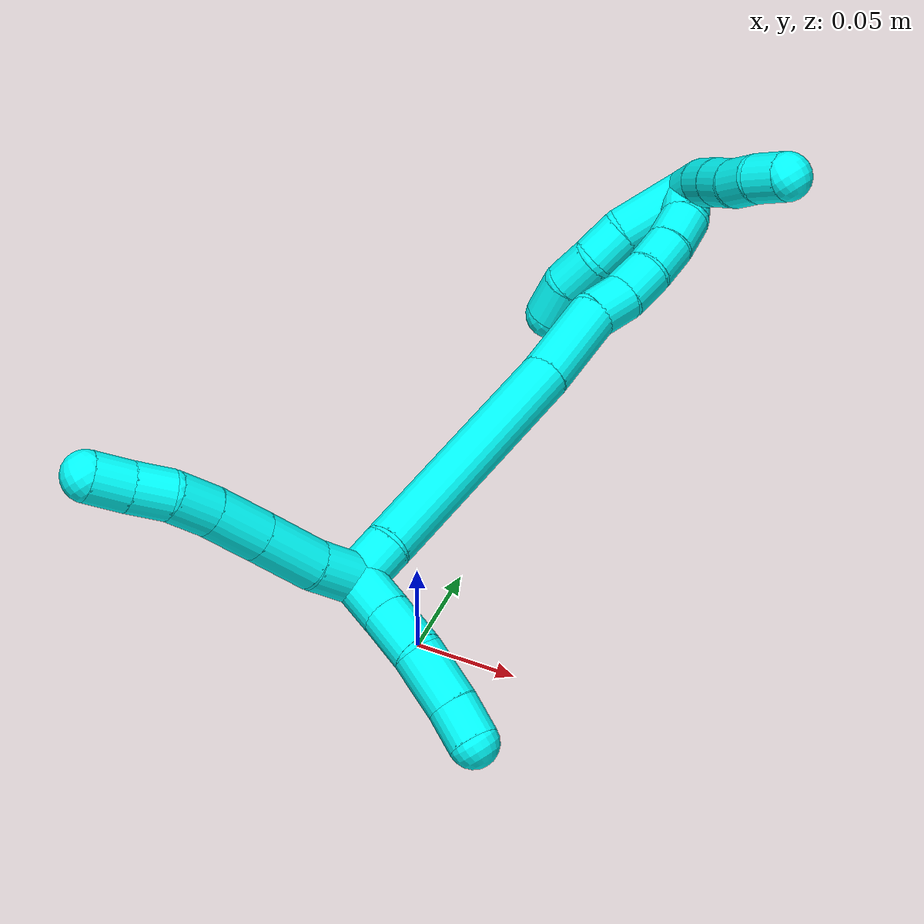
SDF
<sdf version="1.7">
 <world name="default">
  <model name="3">
   <static>0</static>
   <link name="3">
    <collision name="collision-cylinder-e_1_2_8">
     <pose>-0.001003 -0.009288 0.008543 0.827159 -0.079275 -0.034808</pose>
     <geometry><cylinder><radius>0.0125</radius><length>0.025319</length></cylinder></geometry>
     <surface>
      <friction><ode><mu>1.16</mu><mu2>1.16</mu2><slip1>0</slip1><slip2>0</slip2></ode></friction>
      <contact><ode><kp>1e+06</kp><kd>1</kd><max_vel>0</max_vel><min_depth>0.001</min_depth></ode></contact>
     </surface>
    </collision>
    <visual name="visual-cylinder-e_1_2_8">
     <pose>-0.001003 -0.009288 0.008543 0.827159 -0.079275 -0.034808</pose>
     <geometry><cylinder><radius>0.0125</radius><length>0.025319</length></cylinder></geometry>
     <material><ambient>0.003922 1 0.996078 1</ambient></material>
    </visual>
    <collision name="collision-cylinder-e_2_8_9">
     <pose>-0.002436 -0.029022 0.029772 0.688836 -0.026206 -0.009401</pose>
     <geometry><cylinder><radius>0.0125</radius><length>0.032876</length></cylinder></geometry>
     <surface>
      <friction><ode><mu>1.16</mu><mu2>1.16</mu2><slip1>0</slip1><slip2>0</slip2></ode></friction>
      <contact><ode><kp>1e+06</kp><kd>1</kd><max_vel>0</max_vel><min_depth>0.001</min_depth></ode></contact>
     </surface>
    </collision>
    <visual name="visual-cylinder-e_2_8_9">
     <pose>-0.002436 -0.029022 0.029772 0.688836 -0.026206 -0.009401</pose>
     <geometry><cylinder><radius>0.0125</radius><length>0.032876</length></cylinder></geometry>
     <material><ambient>0.003922 1 0.996078 1</ambient></material>
    </visual>
    <collision name="collision-cylinder-e_3_9_10">
     <pose>-0.00326 -0.048616 0.053334 0.699346 -0.027649 -0.010083</pose>
     <geometry><cylinder><radius>0.0125</radius><length>0.028436</length></cylinder></geometry>
     <surface>
      <friction><ode><mu>1.16</mu><mu2>1.16</mu2><slip1>0</slip1><slip2>0</slip2></ode></friction>
      <contact><ode><kp>1e+06</kp><kd>1</kd><max_vel>0</max_vel><min_depth>0.001</min_depth></ode></contact>
     </surface>
    </collision>
    <visual name="visual-cylinder-e_3_9_10">
     <pose>-0.00326 -0.048616 0.053334 0.699346 -0.027649 -0.010083</pose>
     <geometry><cylinder><radius>0.0125</radius><length>0.028436</length></cylinder></geometry>
     <material><ambient>0.003922 1 0.996078 1</ambient></material>
    </visual>
    <collision name="collision-cylinder-e_4_10_11">
     <pose>-0.004228 -0.06567 0.072056 0.789193 -0.051587 -0.021487</pose>
     <geometry><cylinder><radius>0.0125</radius><length>0.022305</length></cylinder></geometry>
     <surface>
      <friction><ode><mu>1.16</mu><mu2>1.16</mu2><slip1>0</slip1><slip2>0</slip2></ode></friction>
      <contact><ode><kp>1e+06</kp><kd>1</kd><max_vel>0</max_vel><min_depth>0.001</min_depth></ode></contact>
     </surface>
    </collision>
    <visual name="visual-cylinder-e_4_10_11">
     <pose>-0.004228 -0.06567 0.072056 0.789193 -0.051587 -0.021487</pose>
     <geometry><cylinder><radius>0.0125</radius><length>0.022305</length></cylinder></geometry>
     <material><ambient>0.003922 1 0.996078 1</ambient></material>
    </visual>
    <collision name="collision-cylinder-e_5_11_12">
     <pose>-0.008018 -0.080567 0.086586 0.807895 -0.320916 -0.138146</pose>
     <geometry><cylinder><radius>0.0125</radius><length>0.020385</length></cylinder></geometry>
     <surface>
      <friction><ode><mu>1.16</mu><mu2>1.16</mu2><slip1>0</slip1><slip2>0</slip2></ode></friction>
      <contact><ode><kp>1e+06</kp><kd>1</kd><max_vel>0</max_vel><min_depth>0.001</min_depth></ode></contact>
     </surface>
    </collision>
    <visual name="visual-cylinder-e_5_11_12">
     <pose>-0.008018 -0.080567 0.086586 0.807895 -0.320916 -0.138146</pose>
     <geometry><cylinder><radius>0.0125</radius><length>0.020385</length></cylinder></geometry>
     <material><ambient>0.003922 1 0.996078 1</ambient></material>
    </visual>
    <collision name="collision-cylinder-e_6_12_6">
     <pose>-0.013906 -0.094648 0.100304 0.789331 -0.261513 -0.109441</pose>
     <geometry><cylinder><radius>0.0125</radius><length>0.020678</length></cylinder></geometry>
     <surface>
      <friction><ode><mu>1.16</mu><mu2>1.16</mu2><slip1>0</slip1><slip2>0</slip2></ode></friction>
      <contact><ode><kp>1e+06</kp><kd>1</kd><max_vel>0</max_vel><min_depth>0.001</min_depth></ode></contact>
     </surface>
    </collision>
    <visual name="visual-cylinder-e_6_12_6">
     <pose>-0.013906 -0.094648 0.100304 0.789331 -0.261513 -0.109441</pose>
     <geometry><cylinder><radius>0.0125</radius><length>0.020678</length></cylinder></geometry>
     <material><ambient>0.003922 1 0.996078 1</ambient></material>
    </visual>
    <collision name="collision-cylinder-e_1_2_13">
     <pose>0.005085 -0.003336 -0.010622 2.83732 0.42842 1.91376</pose>
     <geometry><cylinder><radius>0.0125</radius><length>0.024479</length></cylinder></geometry>
     <surface>
      <friction><ode><mu>1.16</mu><mu2>1.16</mu2><slip1>0</slip1><slip2>0</slip2></ode></friction>
      <contact><ode><kp>1e+06</kp><kd>1</kd><max_vel>0</max_vel><min_depth>0.001</min_depth></ode></contact>
     </surface>
    </collision>
    <visual name="visual-cylinder-e_1_2_13">
     <pose>0.005085 -0.003336 -0.010622 2.83732 0.42842 1.91376</pose>
     <geometry><cylinder><radius>0.0125</radius><length>0.024479</length></cylinder></geometry>
     <material><ambient>0.003922 1 0.996078 1</ambient></material>
    </visual>
    <collision name="collision-cylinder-e_2_13_14">
     <pose>0.0154 -0.010423 -0.032269 2.81357 0.422163 1.82626</pose>
     <geometry><cylinder><radius>0.0125</radius><length>0.025534</length></cylinder></geometry>
     <surface>
      <friction><ode><mu>1.16</mu><mu2>1.16</mu2><slip1>0</slip1><slip2>0</slip2></ode></friction>
      <contact><ode><kp>1e+06</kp><kd>1</kd><max_vel>0</max_vel><min_depth>0.001</min_depth></ode></contact>
     </surface>
    </collision>
    <visual name="visual-cylinder-e_2_13_14">
     <pose>0.0154 -0.010423 -0.032269 2.81357 0.422163 1.82626</pose>
     <geometry><cylinder><radius>0.0125</radius><length>0.025534</length></cylinder></geometry>
     <material><ambient>0.003922 1 0.996078 1</ambient></material>
    </visual>
    <collision name="collision-cylinder-e_3_14_15">
     <pose>0.023574 -0.016774 -0.057621 2.96212 0.199373 1.67637</pose>
     <geometry><cylinder><radius>0.0125</radius><length>0.029711</length></cylinder></geometry>
     <surface>
      <friction><ode><mu>1.16</mu><mu2>1.16</mu2><slip1>0</slip1><slip2>0</slip2></ode></friction>
      <contact><ode><kp>1e+06</kp><kd>1</kd><max_vel>0</max_vel><min_depth>0.001</min_depth></ode></contact>
     </surface>
    </collision>
    <visual name="visual-cylinder-e_3_14_15">
     <pose>0.023574 -0.016774 -0.057621 2.96212 0.199373 1.67637</pose>
     <geometry><cylinder><radius>0.0125</radius><length>0.029711</length></cylinder></geometry>
     <material><ambient>0.003922 1 0.996078 1</ambient></material>
    </visual>
    <collision name="collision-cylinder-e_4_15_5">
     <pose>0.028057 -0.021725 -0.081689 2.90478 0.152575 1.14221</pose>
     <geometry><cylinder><radius>0.0125</radius><length>0.020277</length></cylinder></geometry>
     <surface>
      <friction><ode><mu>1.16</mu><mu2>1.16</mu2><slip1>0</slip1><slip2>0</slip2></ode></friction>
      <contact><ode><kp>1e+06</kp><kd>1</kd><max_vel>0</max_vel><min_depth>0.001</min_depth></ode></contact>
     </surface>
    </collision>
    <visual name="visual-cylinder-e_4_15_5">
     <pose>0.028057 -0.021725 -0.081689 2.90478 0.152575 1.14221</pose>
     <geometry><cylinder><radius>0.0125</radius><length>0.020277</length></cylinder></geometry>
     <material><ambient>0.003922 1 0.996078 1</ambient></material>
    </visual>
    <collision name="collision-cylinder-e_1_2_16">
     <pose>0.005158 0.009589 0.00278 -1.28862 0.476839 -0.361201</pose>
     <geometry><cylinder><radius>0.0125</radius><length>0.022474</length></cylinder></geometry>
     <surface>
      <friction><ode><mu>1.16</mu><mu2>1.16</mu2><slip1>0</slip1><slip2>0</slip2></ode></friction>
      <contact><ode><kp>1e+06</kp><kd>1</kd><max_vel>0</max_vel><min_depth>0.001</min_depth></ode></contact>
     </surface>
    </collision>
    <visual name="visual-cylinder-e_1_2_16">
     <pose>0.005158 0.009589 0.00278 -1.28862 0.476839 -0.361201</pose>
     <geometry><cylinder><radius>0.0125</radius><length>0.022474</length></cylinder></geometry>
     <material><ambient>0.003922 1 0.996078 1</ambient></material>
    </visual>
    <collision name="collision-cylinder-e_2_16_17">
     <pose>0.029069 0.080357 0.019396 -1.34838 0.290528 -0.232749</pose>
     <geometry><cylinder><radius>0.0125</radius><length>0.130936</length></cylinder></geometry>
     <surface>
      <friction><ode><mu>1.16</mu><mu2>1.16</mu2><slip1>0</slip1><slip2>0</slip2></ode></friction>
      <contact><ode><kp>1e+06</kp><kd>1</kd><max_vel>0</max_vel><min_depth>0.001</min_depth></ode></contact>
     </surface>
    </collision>
    <visual name="visual-cylinder-e_2_16_17">
     <pose>0.029069 0.080357 0.019396 -1.34838 0.290528 -0.232749</pose>
     <geometry><cylinder><radius>0.0125</radius><length>0.130936</length></cylinder></geometry>
     <material><ambient>0.003922 1 0.996078 1</ambient></material>
    </visual>
    <collision name="collision-cylinder-e_3_17_18">
     <pose>0.054599 0.162273 0.039576 -1.27396 0.302858 -0.22485</pose>
     <geometry><cylinder><radius>0.0125</radius><length>0.045438</length></cylinder></geometry>
     <surface>
      <friction><ode><mu>1.16</mu><mu2>1.16</mu2><slip1>0</slip1><slip2>0</slip2></ode></friction>
      <contact><ode><kp>1e+06</kp><kd>1</kd><max_vel>0</max_vel><min_depth>0.001</min_depth></ode></contact>
     </surface>
    </collision>
    <visual name="visual-cylinder-e_3_17_18">
     <pose>0.054599 0.162273 0.039576 -1.27396 0.302858 -0.22485</pose>
     <geometry><cylinder><radius>0.0125</radius><length>0.045438</length></cylinder></geometry>
     <material><ambient>0.003922 1 0.996078 1</ambient></material>
    </visual>
    <collision name="collision-cylinder-e_4_18_19">
     <pose>0.065455 0.192161 0.04584 -1.57936 0.419404 -0.422902</pose>
     <geometry><cylinder><radius>0.0125</radius><length>0.020039</length></cylinder></geometry>
     <surface>
      <friction><ode><mu>1.16</mu><mu2>1.16</mu2><slip1>0</slip1><slip2>0</slip2></ode></friction>
      <contact><ode><kp>1e+06</kp><kd>1</kd><max_vel>0</max_vel><min_depth>0.001</min_depth></ode></contact>
     </surface>
    </collision>
    <visual name="visual-cylinder-e_4_18_19">
     <pose>0.065455 0.192161 0.04584 -1.57936 0.419404 -0.422902</pose>
     <geometry><cylinder><radius>0.0125</radius><length>0.020039</length></cylinder></geometry>
     <material><ambient>0.003922 1 0.996078 1</ambient></material>
    </visual>
    <collision name="collision-cylinder-e_5_19_20">
     <pose>0.073713 0.210242 0.047728 -1.35413 0.42861 -0.346391</pose>
     <geometry><cylinder><radius>0.0125</radius><length>0.020107</length></cylinder></geometry>
     <surface>
      <friction><ode><mu>1.16</mu><mu2>1.16</mu2><slip1>0</slip1><slip2>0</slip2></ode></friction>
      <contact><ode><kp>1e+06</kp><kd>1</kd><max_vel>0</max_vel><min_depth>0.001</min_depth></ode></contact>
     </surface>
    </collision>
    <visual name="visual-cylinder-e_5_19_20">
     <pose>0.073713 0.210242 0.047728 -1.35413 0.42861 -0.346391</pose>
     <geometry><cylinder><radius>0.0125</radius><length>0.020107</length></cylinder></geometry>
     <material><ambient>0.003922 1 0.996078 1</ambient></material>
    </visual>
    <collision name="collision-cylinder-e_6_20_21">
     <pose>0.080564 0.228652 0.05229 -1.30346 0.265496 -0.203055</pose>
     <geometry><cylinder><radius>0.0125</radius><length>0.020372</length></cylinder></geometry>
     <surface>
      <friction><ode><mu>1.16</mu><mu2>1.16</mu2><slip1>0</slip1><slip2>0</slip2></ode></friction>
      <contact><ode><kp>1e+06</kp><kd>1</kd><max_vel>0</max_vel><min_depth>0.001</min_depth></ode></contact>
     </surface>
    </collision>
    <visual name="visual-cylinder-e_6_20_21">
     <pose>0.080564 0.228652 0.05229 -1.30346 0.265496 -0.203055</pose>
     <geometry><cylinder><radius>0.0125</radius><length>0.020372</length></cylinder></geometry>
     <material><ambient>0.003922 1 0.996078 1</ambient></material>
    </visual>
    <collision name="collision-cylinder-e_7_21_22">
     <pose>0.084836 0.247628 0.058452 -1.21162 0.156359 -0.108425</pose>
     <geometry><cylinder><radius>0.0125</radius><length>0.020536</length></cylinder></geometry>
     <surface>
      <friction><ode><mu>1.16</mu><mu2>1.16</mu2><slip1>0</slip1><slip2>0</slip2></ode></friction>
      <contact><ode><kp>1e+06</kp><kd>1</kd><max_vel>0</max_vel><min_depth>0.001</min_depth></ode></contact>
     </surface>
    </collision>
    <visual name="visual-cylinder-e_7_21_22">
     <pose>0.084836 0.247628 0.058452 -1.21162 0.156359 -0.108425</pose>
     <geometry><cylinder><radius>0.0125</radius><length>0.020536</length></cylinder></geometry>
     <material><ambient>0.003922 1 0.996078 1</ambient></material>
    </visual>
    <collision name="collision-cylinder-e_8_22_1">
     <pose>0.085492 0.265531 0.067438 -0.998063 -0.09396 0.051239</pose>
     <geometry><cylinder><radius>0.0125</radius><length>0.020097</length></cylinder></geometry>
     <surface>
      <friction><ode><mu>1.16</mu><mu2>1.16</mu2><slip1>0</slip1><slip2>0</slip2></ode></friction>
      <contact><ode><kp>1e+06</kp><kd>1</kd><max_vel>0</max_vel><min_depth>0.001</min_depth></ode></contact>
     </surface>
    </collision>
    <visual name="visual-cylinder-e_8_22_1">
     <pose>0.085492 0.265531 0.067438 -0.998063 -0.09396 0.051239</pose>
     <geometry><cylinder><radius>0.0125</radius><length>0.020097</length></cylinder></geometry>
     <material><ambient>0.003922 1 0.996078 1</ambient></material>
    </visual>
    <collision name="collision-cylinder-e_1_1_23">
     <pose>0.069209 0.26281 0.073007 1.55756 -0.943156 -0.932484</pose>
     <geometry><cylinder><radius>0.0125</radius><length>0.037905</length></cylinder></geometry>
     <surface>
      <friction><ode><mu>1.16</mu><mu2>1.16</mu2><slip1>0</slip1><slip2>0</slip2></ode></friction>
      <contact><ode><kp>1e+06</kp><kd>1</kd><max_vel>0</max_vel><min_depth>0.001</min_depth></ode></contact>
     </surface>
    </collision>
    <visual name="visual-cylinder-e_1_1_23">
     <pose>0.069209 0.26281 0.073007 1.55756 -0.943156 -0.932484</pose>
     <geometry><cylinder><radius>0.0125</radius><length>0.037905</length></cylinder></geometry>
     <material><ambient>0.003922 1 0.996078 1</ambient></material>
    </visual>
    <collision name="collision-cylinder-e_2_23_24">
     <pose>0.045463 0.246623 0.071001 1.97336 -0.991574 -1.37141</pose>
     <geometry><cylinder><radius>0.0125</radius><length>0.020086</length></cylinder></geometry>
     <surface>
      <friction><ode><mu>1.16</mu><mu2>1.16</mu2><slip1>0</slip1><slip2>0</slip2></ode></friction>
      <contact><ode><kp>1e+06</kp><kd>1</kd><max_vel>0</max_vel><min_depth>0.001</min_depth></ode></contact>
     </surface>
    </collision>
    <visual name="visual-cylinder-e_2_23_24">
     <pose>0.045463 0.246623 0.071001 1.97336 -0.991574 -1.37141</pose>
     <geometry><cylinder><radius>0.0125</radius><length>0.020086</length></cylinder></geometry>
     <material><ambient>0.003922 1 0.996078 1</ambient></material>
    </visual>
    <collision name="collision-cylinder-e_3_24_25">
     <pose>0.027093 0.239263 0.067176 2.19855 -1.2927 -1.95297</pose>
     <geometry><cylinder><radius>0.0125</radius><length>0.020727</length></cylinder></geometry>
     <surface>
      <friction><ode><mu>1.16</mu><mu2>1.16</mu2><slip1>0</slip1><slip2>0</slip2></ode></friction>
      <contact><ode><kp>1e+06</kp><kd>1</kd><max_vel>0</max_vel><min_depth>0.001</min_depth></ode></contact>
     </surface>
    </collision>
    <visual name="visual-cylinder-e_3_24_25">
     <pose>0.027093 0.239263 0.067176 2.19855 -1.2927 -1.95297</pose>
     <geometry><cylinder><radius>0.0125</radius><length>0.020727</length></cylinder></geometry>
     <material><ambient>0.003922 1 0.996078 1</ambient></material>
    </visual>
    <collision name="collision-cylinder-e_4_25_4">
     <pose>0.007393 0.236762 0.061213 3.09548 -1.15518 -3.07086</pose>
     <geometry><cylinder><radius>0.0125</radius><length>0.021281</length></cylinder></geometry>
     <surface>
      <friction><ode><mu>1.16</mu><mu2>1.16</mu2><slip1>0</slip1><slip2>0</slip2></ode></friction>
      <contact><ode><kp>1e+06</kp><kd>1</kd><max_vel>0</max_vel><min_depth>0.001</min_depth></ode></contact>
     </surface>
    </collision>
    <visual name="visual-cylinder-e_4_25_4">
     <pose>0.007393 0.236762 0.061213 3.09548 -1.15518 -3.07086</pose>
     <geometry><cylinder><radius>0.0125</radius><length>0.021281</length></cylinder></geometry>
     <material><ambient>0.003922 1 0.996078 1</ambient></material>
    </visual>
    <collision name="collision-cylinder-e_1_1_26">
     <pose>0.093558 0.269597 0.072894 1.56289 1.12164 1.11453</pose>
     <geometry><cylinder><radius>0.0125</radius><length>0.02</length></cylinder></geometry>
     <surface>
      <friction><ode><mu>1.16</mu><mu2>1.16</mu2><slip1>0</slip1><slip2>0</slip2></ode></friction>
      <contact><ode><kp>1e+06</kp><kd>1</kd><max_vel>0</max_vel><min_depth>0.001</min_depth></ode></contact>
     </surface>
    </collision>
    <visual name="visual-cylinder-e_1_1_26">
     <pose>0.093558 0.269597 0.072894 1.56289 1.12164 1.11453</pose>
     <geometry><cylinder><radius>0.0125</radius><length>0.02</length></cylinder></geometry>
     <material><ambient>0.003922 1 0.996078 1</ambient></material>
    </visual>
    <collision name="collision-cylinder-e_2_26_27">
     <pose>0.110511 0.259484 0.071039 1.88727 0.918224 1.19717</pose>
     <geometry><cylinder><radius>0.0125</radius><length>0.02</length></cylinder></geometry>
     <surface>
      <friction><ode><mu>1.16</mu><mu2>1.16</mu2><slip1>0</slip1><slip2>0</slip2></ode></friction>
      <contact><ode><kp>1e+06</kp><kd>1</kd><max_vel>0</max_vel><min_depth>0.001</min_depth></ode></contact>
     </surface>
    </collision>
    <visual name="visual-cylinder-e_2_26_27">
     <pose>0.110511 0.259484 0.071039 1.88727 0.918224 1.19717</pose>
     <geometry><cylinder><radius>0.0125</radius><length>0.02</length></cylinder></geometry>
     <material><ambient>0.003922 1 0.996078 1</ambient></material>
    </visual>
    <collision name="collision-cylinder-e_3_27_28">
     <pose>0.126473 0.24825 0.066723 1.98871 0.930014 1.31454</pose>
     <geometry><cylinder><radius>0.0125</radius><length>0.02</length></cylinder></geometry>
     <surface>
      <friction><ode><mu>1.16</mu><mu2>1.16</mu2><slip1>0</slip1><slip2>0</slip2></ode></friction>
      <contact><ode><kp>1e+06</kp><kd>1</kd><max_vel>0</max_vel><min_depth>0.001</min_depth></ode></contact>
     </surface>
    </collision>
    <visual name="visual-cylinder-e_3_27_28">
     <pose>0.126473 0.24825 0.066723 1.98871 0.930014 1.31454</pose>
     <geometry><cylinder><radius>0.0125</radius><length>0.02</length></cylinder></geometry>
     <material><ambient>0.003922 1 0.996078 1</ambient></material>
    </visual>
    <collision name="collision-cylinder-e_4_28_29">
     <pose>0.143512 0.238855 0.062525 1.99405 1.12502 1.54597</pose>
     <geometry><cylinder><radius>0.0125</radius><length>0.02</length></cylinder></geometry>
     <surface>
      <friction><ode><mu>1.16</mu><mu2>1.16</mu2><slip1>0</slip1><slip2>0</slip2></ode></friction>
      <contact><ode><kp>1e+06</kp><kd>1</kd><max_vel>0</max_vel><min_depth>0.001</min_depth></ode></contact>
     </surface>
    </collision>
    <visual name="visual-cylinder-e_4_28_29">
     <pose>0.143512 0.238855 0.062525 1.99405 1.12502 1.54597</pose>
     <geometry><cylinder><radius>0.0125</radius><length>0.02</length></cylinder></geometry>
     <material><ambient>0.003922 1 0.996078 1</ambient></material>
    </visual>
    <collision name="collision-cylinder-e_5_29_3">
     <pose>0.161747 0.232915 0.057424 2.59879 1.17132 2.34715</pose>
     <geometry><cylinder><radius>0.0125</radius><length>0.02</length></cylinder></geometry>
     <surface>
      <friction><ode><mu>1.16</mu><mu2>1.16</mu2><slip1>0</slip1><slip2>0</slip2></ode></friction>
      <contact><ode><kp>1e+06</kp><kd>1</kd><max_vel>0</max_vel><min_depth>0.001</min_depth></ode></contact>
     </surface>
    </collision>
    <visual name="visual-cylinder-e_5_29_3">
     <pose>0.161747 0.232915 0.057424 2.59879 1.17132 2.34715</pose>
     <geometry><cylinder><radius>0.0125</radius><length>0.02</length></cylinder></geometry>
     <material><ambient>0.003922 1 0.996078 1</ambient></material>
    </visual>
    <collision name="collision-sphere-3">
     <pose>0.17096 0.230906 0.054094 0 -0 0</pose>
     <geometry><sphere><radius>0.0125</radius></sphere></geometry>
     <surface>
      <friction><ode><mu>1.16</mu><mu2>1.16</mu2><slip1>0</slip1><slip2>0</slip2></ode></friction>
      <contact><ode><kp>1e+06</kp><kd>1</kd><max_vel>0</max_vel><min_depth>0.001</min_depth></ode></contact>
     </surface>
    </collision>
    <visual name="visual-sphere-3">
     <pose>0.17096 0.230906 0.054094 0 -0 0</pose>
     <geometry><sphere><radius>0.0125</radius></sphere></geometry>
     <material><ambient>0.003922 1 0.996078 1</ambient></material>
    </visual>
    <collision name="collision-sphere-29">
     <pose>0.152534 0.234924 0.060754 0 -0 0</pose>
     <geometry><sphere><radius>0.0125</radius></sphere></geometry>
     <surface>
      <friction><ode><mu>1.16</mu><mu2>1.16</mu2><slip1>0</slip1><slip2>0</slip2></ode></friction>
      <contact><ode><kp>1e+06</kp><kd>1</kd><max_vel>0</max_vel><min_depth>0.001</min_depth></ode></contact>
     </surface>
    </collision>
    <visual name="visual-sphere-29">
     <pose>0.152534 0.234924 0.060754 0 -0 0</pose>
     <geometry><sphere><radius>0.0125</radius></sphere></geometry>
     <material><ambient>0.003922 1 0.996078 1</ambient></material>
    </visual>
    <collision name="collision-sphere-28">
     <pose>0.134489 0.242786 0.064296 0 -0 0</pose>
     <geometry><sphere><radius>0.0125</radius></sphere></geometry>
     <surface>
      <friction><ode><mu>1.16</mu><mu2>1.16</mu2><slip1>0</slip1><slip2>0</slip2></ode></friction>
      <contact><ode><kp>1e+06</kp><kd>1</kd><max_vel>0</max_vel><min_depth>0.001</min_depth></ode></contact>
     </surface>
    </collision>
    <visual name="visual-sphere-28">
     <pose>0.134489 0.242786 0.064296 0 -0 0</pose>
     <geometry><sphere><radius>0.0125</radius></sphere></geometry>
     <material><ambient>0.003922 1 0.996078 1</ambient></material>
    </visual>
    <collision name="collision-sphere-27">
     <pose>0.118456 0.253713 0.069149 0 -0 0</pose>
     <geometry><sphere><radius>0.0125</radius></sphere></geometry>
     <surface>
      <friction><ode><mu>1.16</mu><mu2>1.16</mu2><slip1>0</slip1><slip2>0</slip2></ode></friction>
      <contact><ode><kp>1e+06</kp><kd>1</kd><max_vel>0</max_vel><min_depth>0.001</min_depth></ode></contact>
     </surface>
    </collision>
    <visual name="visual-sphere-27">
     <pose>0.118456 0.253713 0.069149 0 -0 0</pose>
     <geometry><sphere><radius>0.0125</radius></sphere></geometry>
     <material><ambient>0.003922 1 0.996078 1</ambient></material>
    </visual>
    <collision name="collision-sphere-26">
     <pose>0.102566 0.265255 0.072928 0 -0 0</pose>
     <geometry><sphere><radius>0.0125</radius></sphere></geometry>
     <surface>
      <friction><ode><mu>1.16</mu><mu2>1.16</mu2><slip1>0</slip1><slip2>0</slip2></ode></friction>
      <contact><ode><kp>1e+06</kp><kd>1</kd><max_vel>0</max_vel><min_depth>0.001</min_depth></ode></contact>
     </surface>
    </collision>
    <visual name="visual-sphere-26">
     <pose>0.102566 0.265255 0.072928 0 -0 0</pose>
     <geometry><sphere><radius>0.0125</radius></sphere></geometry>
     <material><ambient>0.003922 1 0.996078 1</ambient></material>
    </visual>
    <collision name="collision-sphere-4">
     <pose>-0.002342 0.236564 0.056922 0 -0 0</pose>
     <geometry><sphere><radius>0.0125</radius></sphere></geometry>
     <surface>
      <friction><ode><mu>1.16</mu><mu2>1.16</mu2><slip1>0</slip1><slip2>0</slip2></ode></friction>
      <contact><ode><kp>1e+06</kp><kd>1</kd><max_vel>0</max_vel><min_depth>0.001</min_depth></ode></contact>
     </surface>
    </collision>
    <visual name="visual-sphere-4">
     <pose>-0.002342 0.236564 0.056922 0 -0 0</pose>
     <geometry><sphere><radius>0.0125</radius></sphere></geometry>
     <material><ambient>0.003922 1 0.996078 1</ambient></material>
    </visual>
    <collision name="collision-sphere-25">
     <pose>0.017127 0.23696 0.065505 0 -0 0</pose>
     <geometry><sphere><radius>0.0125</radius></sphere></geometry>
     <surface>
      <friction><ode><mu>1.16</mu><mu2>1.16</mu2><slip1>0</slip1><slip2>0</slip2></ode></friction>
      <contact><ode><kp>1e+06</kp><kd>1</kd><max_vel>0</max_vel><min_depth>0.001</min_depth></ode></contact>
     </surface>
    </collision>
    <visual name="visual-sphere-25">
     <pose>0.017127 0.23696 0.065505 0 -0 0</pose>
     <geometry><sphere><radius>0.0125</radius></sphere></geometry>
     <material><ambient>0.003922 1 0.996078 1</ambient></material>
    </visual>
    <collision name="collision-sphere-24">
     <pose>0.037058 0.241565 0.068847 0 -0 0</pose>
     <geometry><sphere><radius>0.0125</radius></sphere></geometry>
     <surface>
      <friction><ode><mu>1.16</mu><mu2>1.16</mu2><slip1>0</slip1><slip2>0</slip2></ode></friction>
      <contact><ode><kp>1e+06</kp><kd>1</kd><max_vel>0</max_vel><min_depth>0.001</min_depth></ode></contact>
     </surface>
    </collision>
    <visual name="visual-sphere-24">
     <pose>0.037058 0.241565 0.068847 0 -0 0</pose>
     <geometry><sphere><radius>0.0125</radius></sphere></geometry>
     <material><ambient>0.003922 1 0.996078 1</ambient></material>
    </visual>
    <collision name="collision-sphere-23">
     <pose>0.053868 0.251681 0.073154 0 -0 0</pose>
     <geometry><sphere><radius>0.0125</radius></sphere></geometry>
     <surface>
      <friction><ode><mu>1.16</mu><mu2>1.16</mu2><slip1>0</slip1><slip2>0</slip2></ode></friction>
      <contact><ode><kp>1e+06</kp><kd>1</kd><max_vel>0</max_vel><min_depth>0.001</min_depth></ode></contact>
     </surface>
    </collision>
    <visual name="visual-sphere-23">
     <pose>0.053868 0.251681 0.073154 0 -0 0</pose>
     <geometry><sphere><radius>0.0125</radius></sphere></geometry>
     <material><ambient>0.003922 1 0.996078 1</ambient></material>
    </visual>
    <collision name="collision-sphere-1">
     <pose>0.08455 0.273939 0.07286 0 -0 0</pose>
     <geometry><sphere><radius>0.0125</radius></sphere></geometry>
     <surface>
      <friction><ode><mu>1.16</mu><mu2>1.16</mu2><slip1>0</slip1><slip2>0</slip2></ode></friction>
      <contact><ode><kp>1e+06</kp><kd>1</kd><max_vel>0</max_vel><min_depth>0.001</min_depth></ode></contact>
     </surface>
    </collision>
    <visual name="visual-sphere-1">
     <pose>0.08455 0.273939 0.07286 0 -0 0</pose>
     <geometry><sphere><radius>0.0125</radius></sphere></geometry>
     <material><ambient>0.003922 1 0.996078 1</ambient></material>
    </visual>
    <collision name="collision-sphere-22">
     <pose>0.086435 0.257124 0.062017 0 -0 0</pose>
     <geometry><sphere><radius>0.0125</radius></sphere></geometry>
     <surface>
      <friction><ode><mu>1.16</mu><mu2>1.16</mu2><slip1>0</slip1><slip2>0</slip2></ode></friction>
      <contact><ode><kp>1e+06</kp><kd>1</kd><max_vel>0</max_vel><min_depth>0.001</min_depth></ode></contact>
     </surface>
    </collision>
    <visual name="visual-sphere-22">
     <pose>0.086435 0.257124 0.062017 0 -0 0</pose>
     <geometry><sphere><radius>0.0125</radius></sphere></geometry>
     <material><ambient>0.003922 1 0.996078 1</ambient></material>
    </visual>
    <collision name="collision-sphere-21">
     <pose>0.083237 0.238133 0.054886 0 -0 0</pose>
     <geometry><sphere><radius>0.0125</radius></sphere></geometry>
     <surface>
      <friction><ode><mu>1.16</mu><mu2>1.16</mu2><slip1>0</slip1><slip2>0</slip2></ode></friction>
      <contact><ode><kp>1e+06</kp><kd>1</kd><max_vel>0</max_vel><min_depth>0.001</min_depth></ode></contact>
     </surface>
    </collision>
    <visual name="visual-sphere-21">
     <pose>0.083237 0.238133 0.054886 0 -0 0</pose>
     <geometry><sphere><radius>0.0125</radius></sphere></geometry>
     <material><ambient>0.003922 1 0.996078 1</ambient></material>
    </visual>
    <collision name="collision-sphere-12">
     <pose>-0.011233 -0.087558 0.093269 0 -0 0</pose>
     <geometry><sphere><radius>0.0125</radius></sphere></geometry>
     <surface>
      <friction><ode><mu>1.16</mu><mu2>1.16</mu2><slip1>0</slip1><slip2>0</slip2></ode></friction>
      <contact><ode><kp>1e+06</kp><kd>1</kd><max_vel>0</max_vel><min_depth>0.001</min_depth></ode></contact>
     </surface>
    </collision>
    <visual name="visual-sphere-12">
     <pose>-0.011233 -0.087558 0.093269 0 -0 0</pose>
     <geometry><sphere><radius>0.0125</radius></sphere></geometry>
     <material><ambient>0.003922 1 0.996078 1</ambient></material>
    </visual>
    <collision name="collision-sphere-11">
     <pose>-0.004803 -0.073576 0.079902 0 -0 0</pose>
     <geometry><sphere><radius>0.0125</radius></sphere></geometry>
     <surface>
      <friction><ode><mu>1.16</mu><mu2>1.16</mu2><slip1>0</slip1><slip2>0</slip2></ode></friction>
      <contact><ode><kp>1e+06</kp><kd>1</kd><max_vel>0</max_vel><min_depth>0.001</min_depth></ode></contact>
     </surface>
    </collision>
    <visual name="visual-sphere-11">
     <pose>-0.004803 -0.073576 0.079902 0 -0 0</pose>
     <geometry><sphere><radius>0.0125</radius></sphere></geometry>
     <material><ambient>0.003922 1 0.996078 1</ambient></material>
    </visual>
    <collision name="collision-sphere-10">
     <pose>-0.003653 -0.057765 0.06421 0 -0 0</pose>
     <geometry><sphere><radius>0.0125</radius></sphere></geometry>
     <surface>
      <friction><ode><mu>1.16</mu><mu2>1.16</mu2><slip1>0</slip1><slip2>0</slip2></ode></friction>
      <contact><ode><kp>1e+06</kp><kd>1</kd><max_vel>0</max_vel><min_depth>0.001</min_depth></ode></contact>
     </surface>
    </collision>
    <visual name="visual-sphere-10">
     <pose>-0.003653 -0.057765 0.06421 0 -0 0</pose>
     <geometry><sphere><radius>0.0125</radius></sphere></geometry>
     <material><ambient>0.003922 1 0.996078 1</ambient></material>
    </visual>
    <collision name="collision-sphere-9">
     <pose>-0.002867 -0.039467 0.042457 0 -0 0</pose>
     <geometry><sphere><radius>0.0125</radius></sphere></geometry>
     <surface>
      <friction><ode><mu>1.16</mu><mu2>1.16</mu2><slip1>0</slip1><slip2>0</slip2></ode></friction>
      <contact><ode><kp>1e+06</kp><kd>1</kd><max_vel>0</max_vel><min_depth>0.001</min_depth></ode></contact>
     </surface>
    </collision>
    <visual name="visual-sphere-9">
     <pose>-0.002867 -0.039467 0.042457 0 -0 0</pose>
     <geometry><sphere><radius>0.0125</radius></sphere></geometry>
     <material><ambient>0.003922 1 0.996078 1</ambient></material>
    </visual>
    <collision name="collision-sphere-2">
     <geometry><sphere><radius>0.0125</radius></sphere></geometry>
     <surface>
      <friction><ode><mu>1.16</mu><mu2>1.16</mu2><slip1>0</slip1><slip2>0</slip2></ode></friction>
      <contact><ode><kp>1e+06</kp><kd>1</kd><max_vel>0</max_vel><min_depth>0.001</min_depth></ode></contact>
     </surface>
    </collision>
    <visual name="visual-sphere-2">
     <geometry><sphere><radius>0.0125</radius></sphere></geometry>
     <material><ambient>0.003922 1 0.996078 1</ambient></material>
    </visual>
    <collision name="collision-sphere-19">
     <pose>0.069535 0.201312 0.045762 0 -0 0</pose>
     <geometry><sphere><radius>0.0125</radius></sphere></geometry>
     <surface>
      <friction><ode><mu>1.16</mu><mu2>1.16</mu2><slip1>0</slip1><slip2>0</slip2></ode></friction>
      <contact><ode><kp>1e+06</kp><kd>1</kd><max_vel>0</max_vel><min_depth>0.001</min_depth></ode></contact>
     </surface>
    </collision>
    <visual name="visual-sphere-19">
     <pose>0.069535 0.201312 0.045762 0 -0 0</pose>
     <geometry><sphere><radius>0.0125</radius></sphere></geometry>
     <material><ambient>0.003922 1 0.996078 1</ambient></material>
    </visual>
    <collision name="collision-sphere-8">
     <pose>-0.002005 -0.018577 0.017086 0 -0 0</pose>
     <geometry><sphere><radius>0.0125</radius></sphere></geometry>
     <surface>
      <friction><ode><mu>1.16</mu><mu2>1.16</mu2><slip1>0</slip1><slip2>0</slip2></ode></friction>
      <contact><ode><kp>1e+06</kp><kd>1</kd><max_vel>0</max_vel><min_depth>0.001</min_depth></ode></contact>
     </surface>
    </collision>
    <visual name="visual-sphere-8">
     <pose>-0.002005 -0.018577 0.017086 0 -0 0</pose>
     <geometry><sphere><radius>0.0125</radius></sphere></geometry>
     <material><ambient>0.003922 1 0.996078 1</ambient></material>
    </visual>
    <collision name="collision-sphere-6">
     <pose>-0.016579 -0.101738 0.107338 0 -0 0</pose>
     <geometry><sphere><radius>0.0125</radius></sphere></geometry>
     <surface>
      <friction><ode><mu>1.16</mu><mu2>1.16</mu2><slip1>0</slip1><slip2>0</slip2></ode></friction>
      <contact><ode><kp>1e+06</kp><kd>1</kd><max_vel>0</max_vel><min_depth>0.001</min_depth></ode></contact>
     </surface>
    </collision>
    <visual name="visual-sphere-6">
     <pose>-0.016579 -0.101738 0.107338 0 -0 0</pose>
     <geometry><sphere><radius>0.0125</radius></sphere></geometry>
     <material><ambient>0.003922 1 0.996078 1</ambient></material>
    </visual>
    <collision name="collision-sphere-13">
     <pose>0.010169 -0.006671 -0.021244 0 -0 0</pose>
     <geometry><sphere><radius>0.0125</radius></sphere></geometry>
     <surface>
      <friction><ode><mu>1.16</mu><mu2>1.16</mu2><slip1>0</slip1><slip2>0</slip2></ode></friction>
      <contact><ode><kp>1e+06</kp><kd>1</kd><max_vel>0</max_vel><min_depth>0.001</min_depth></ode></contact>
     </surface>
    </collision>
    <visual name="visual-sphere-13">
     <pose>0.010169 -0.006671 -0.021244 0 -0 0</pose>
     <geometry><sphere><radius>0.0125</radius></sphere></geometry>
     <material><ambient>0.003922 1 0.996078 1</ambient></material>
    </visual>
    <collision name="collision-sphere-14">
     <pose>0.020631 -0.014175 -0.043294 0 -0 0</pose>
     <geometry><sphere><radius>0.0125</radius></sphere></geometry>
     <surface>
      <friction><ode><mu>1.16</mu><mu2>1.16</mu2><slip1>0</slip1><slip2>0</slip2></ode></friction>
      <contact><ode><kp>1e+06</kp><kd>1</kd><max_vel>0</max_vel><min_depth>0.001</min_depth></ode></contact>
     </surface>
    </collision>
    <visual name="visual-sphere-14">
     <pose>0.020631 -0.014175 -0.043294 0 -0 0</pose>
     <geometry><sphere><radius>0.0125</radius></sphere></geometry>
     <material><ambient>0.003922 1 0.996078 1</ambient></material>
    </visual>
    <collision name="collision-sphere-15">
     <pose>0.026516 -0.019374 -0.071948 0 -0 0</pose>
     <geometry><sphere><radius>0.0125</radius></sphere></geometry>
     <surface>
      <friction><ode><mu>1.16</mu><mu2>1.16</mu2><slip1>0</slip1><slip2>0</slip2></ode></friction>
      <contact><ode><kp>1e+06</kp><kd>1</kd><max_vel>0</max_vel><min_depth>0.001</min_depth></ode></contact>
     </surface>
    </collision>
    <visual name="visual-sphere-15">
     <pose>0.026516 -0.019374 -0.071948 0 -0 0</pose>
     <geometry><sphere><radius>0.0125</radius></sphere></geometry>
     <material><ambient>0.003922 1 0.996078 1</ambient></material>
    </visual>
    <collision name="collision-sphere-5">
     <pose>0.029597 -0.024075 -0.09143 0 -0 0</pose>
     <geometry><sphere><radius>0.0125</radius></sphere></geometry>
     <surface>
      <friction><ode><mu>1.16</mu><mu2>1.16</mu2><slip1>0</slip1><slip2>0</slip2></ode></friction>
      <contact><ode><kp>1e+06</kp><kd>1</kd><max_vel>0</max_vel><min_depth>0.001</min_depth></ode></contact>
     </surface>
    </collision>
    <visual name="visual-sphere-5">
     <pose>0.029597 -0.024075 -0.09143 0 -0 0</pose>
     <geometry><sphere><radius>0.0125</radius></sphere></geometry>
     <material><ambient>0.003922 1 0.996078 1</ambient></material>
    </visual>
    <collision name="collision-sphere-16">
     <pose>0.010315 0.019178 0.00556 0 -0 0</pose>
     <geometry><sphere><radius>0.0125</radius></sphere></geometry>
     <surface>
      <friction><ode><mu>1.16</mu><mu2>1.16</mu2><slip1>0</slip1><slip2>0</slip2></ode></friction>
      <contact><ode><kp>1e+06</kp><kd>1</kd><max_vel>0</max_vel><min_depth>0.001</min_depth></ode></contact>
     </surface>
    </collision>
    <visual name="visual-sphere-16">
     <pose>0.010315 0.019178 0.00556 0 -0 0</pose>
     <geometry><sphere><radius>0.0125</radius></sphere></geometry>
     <material><ambient>0.003922 1 0.996078 1</ambient></material>
    </visual>
    <collision name="collision-sphere-17">
     <pose>0.047823 0.141536 0.033233 0 -0 0</pose>
     <geometry><sphere><radius>0.0125</radius></sphere></geometry>
     <surface>
      <friction><ode><mu>1.16</mu><mu2>1.16</mu2><slip1>0</slip1><slip2>0</slip2></ode></friction>
      <contact><ode><kp>1e+06</kp><kd>1</kd><max_vel>0</max_vel><min_depth>0.001</min_depth></ode></contact>
     </surface>
    </collision>
    <visual name="visual-sphere-17">
     <pose>0.047823 0.141536 0.033233 0 -0 0</pose>
     <geometry><sphere><radius>0.0125</radius></sphere></geometry>
     <material><ambient>0.003922 1 0.996078 1</ambient></material>
    </visual>
    <collision name="collision-sphere-18">
     <pose>0.061375 0.18301 0.045918 0 -0 0</pose>
     <geometry><sphere><radius>0.0125</radius></sphere></geometry>
     <surface>
      <friction><ode><mu>1.16</mu><mu2>1.16</mu2><slip1>0</slip1><slip2>0</slip2></ode></friction>
      <contact><ode><kp>1e+06</kp><kd>1</kd><max_vel>0</max_vel><min_depth>0.001</min_depth></ode></contact>
     </surface>
    </collision>
    <visual name="visual-sphere-18">
     <pose>0.061375 0.18301 0.045918 0 -0 0</pose>
     <geometry><sphere><radius>0.0125</radius></sphere></geometry>
     <material><ambient>0.003922 1 0.996078 1</ambient></material>
    </visual>
    <collision name="collision-sphere-20">
     <pose>0.077892 0.219172 0.049693 0 -0 0</pose>
     <geometry><sphere><radius>0.0125</radius></sphere></geometry>
     <surface>
      <friction><ode><mu>1.16</mu><mu2>1.16</mu2><slip1>0</slip1><slip2>0</slip2></ode></friction>
      <contact><ode><kp>1e+06</kp><kd>1</kd><max_vel>0</max_vel><min_depth>0.001</min_depth></ode></contact>
     </surface>
    </collision>
    <visual name="visual-sphere-20">
     <pose>0.077892 0.219172 0.049693 0 -0 0</pose>
     <geometry><sphere><radius>0.0125</radius></sphere></geometry>
     <material><ambient>0.003922 1 0.996078 1</ambient></material>
    </visual>
    <inertial>
     <pose>0.043085 0.109655 0.036141 0 -0 0</pose>
     <mass>0.75</mass>
     <inertia>
      <ixx>0.00018</ixx>
      <ixy>0</ixy>
      <ixz>0</ixz>
      <iyy>5.2e-05</iyy>
      <iyz>0</iyz>
      <izz>-0.000232</izz>
     </inertia>
    </inertial>
   </link>
   <pose>-0.027049 -0.008912 0.041498 -0.405559 -0.80913 0.136405</pose>
  </model>
 </world>
</sdf>
